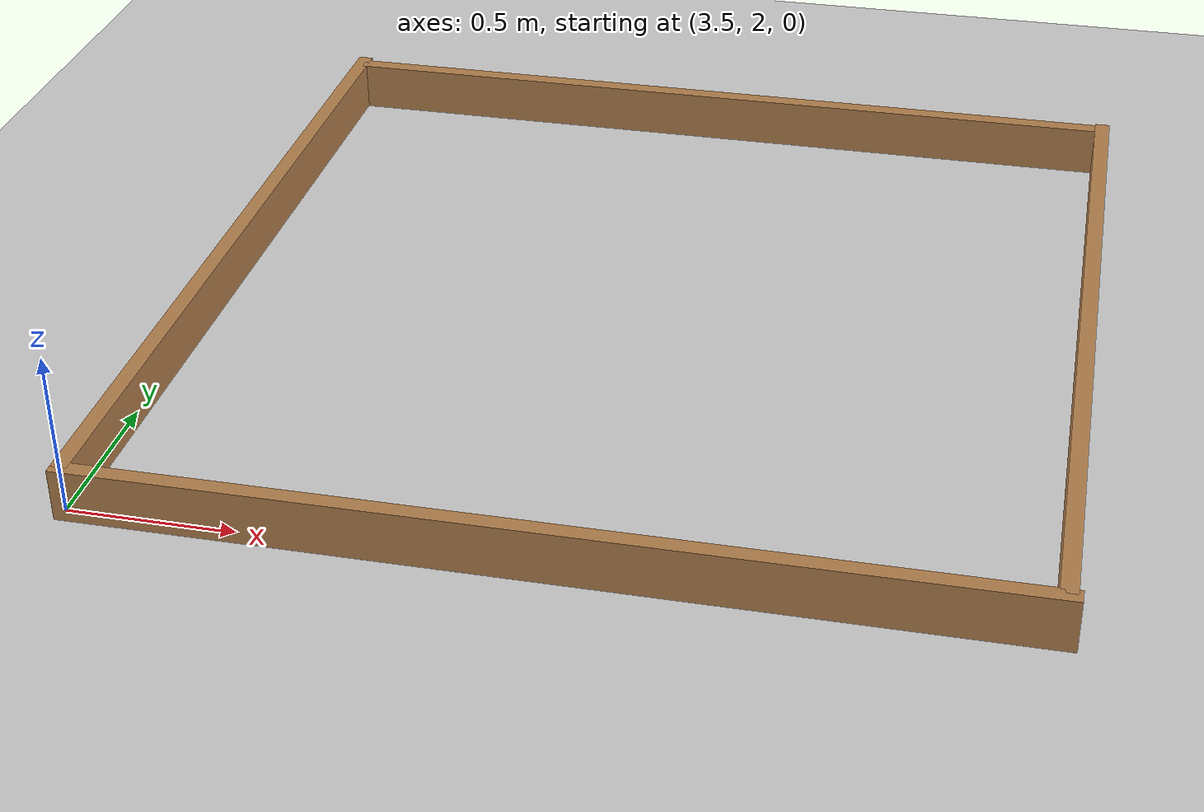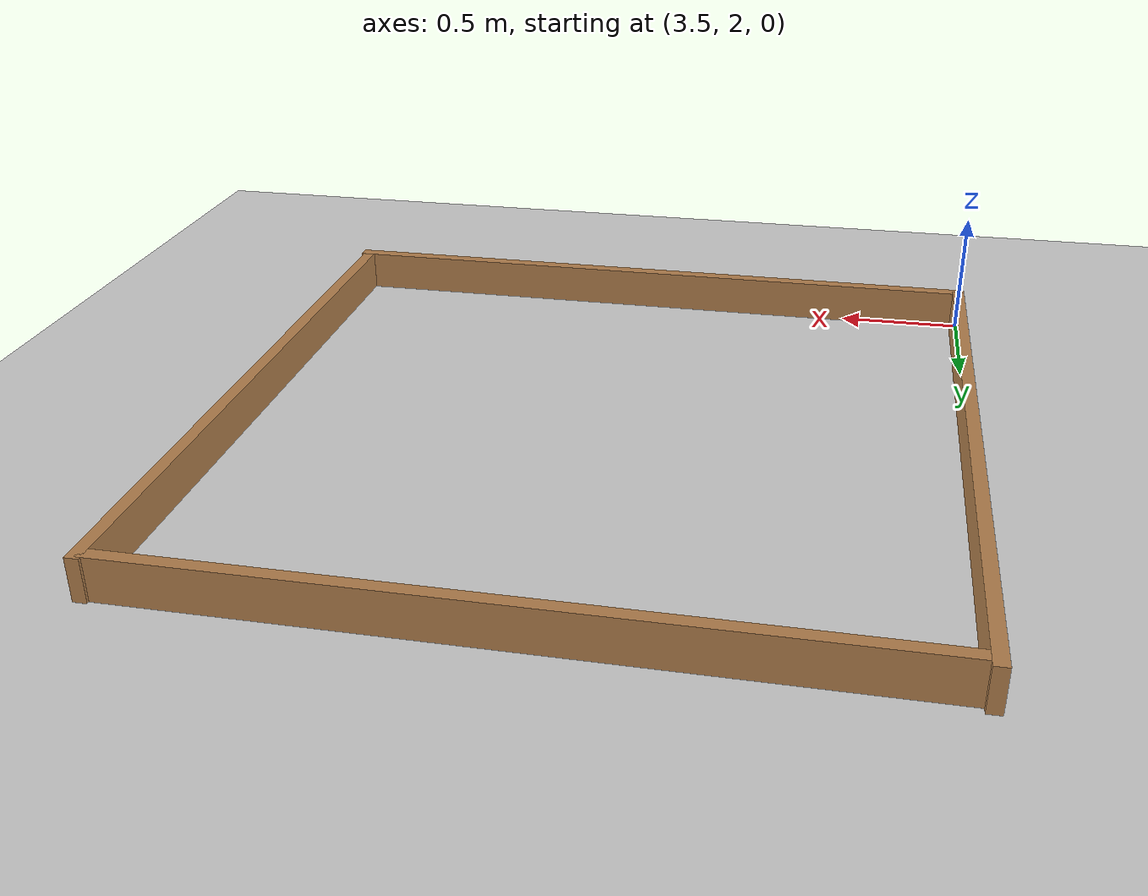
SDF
<sdf version="1.6">
 <world name="default">
  <model name="ground_plane">
   <static>1</static>
   <link name="link">
    <collision name="collision">
     <geometry><plane><normal>0 0 1</normal><size>100 100</size></plane></geometry>
     <surface><friction><ode><mu>100</mu><mu2>50</mu2></ode></friction></surface>
    </collision>
    <visual name="visual">
     <cast_shadows>0</cast_shadows>
     <geometry><plane><normal>0 0 1</normal><size>100 100</size></plane></geometry>
     <material>
      <script><uri>file://media/materials/scripts/gazebo.material</uri><name>Gazebo/Grey</name></script>
     </material>
    </visual>
   </link>
  </model>
  <model name="turtlebot3_square">
   <link name="Wall_0">
    <pose>0.557021 1.925 0 0 -0 0</pose>
    <inertial>
     <inertia><ixx>0</ixx><ixy>0</ixy><ixz>0</ixz><iyy>0</iyy><iyz>0</iyz><izz>0</izz></inertia>
     <mass>0</mass>
    </inertial>
    <visual name="Wall_0_Visual">
     <pose>0 0 0.25 0 -0 0</pose>
     <geometry><box><size>2.7317 0.05 0.2</size></box></geometry>
     <material>
      <script><uri>file://media/materials/scripts/gazebo.material</uri><name>Gazebo/Wood</name></script>
      <ambient>1 1 1 1</ambient>
     </material>
    </visual>
    <collision name="Wall_0_Collision">
     <pose>0 0 0.25 0 -0 0</pose>
     <geometry><box><size>2.7317 0.05 0.2</size></box></geometry>
     <surface>
      <friction>
       <ode><mu>1</mu><mu2>1</mu2><fdir1>0 0 0</fdir1><slip1>0</slip1><slip2>0</slip2></ode>
       <torsional>
        <coefficient>1</coefficient>
        <patch_radius>0</patch_radius>
        <surface_radius>0</surface_radius>
        <use_patch_radius>1</use_patch_radius>
        <ode><slip>0</slip></ode>
       </torsional>
      </friction>
      <bounce><restitution_coefficient>0</restitution_coefficient><threshold>1e+06</threshold></bounce>
      <contact>
       <collide_without_contact>0</collide_without_contact>
       <collide_without_contact_bitmask>1</collide_without_contact_bitmask>
       <collide_bitmask>1</collide_bitmask>
       <ode>
        <soft_cfm>0</soft_cfm>
        <soft_erp>0.2</soft_erp>
        <kp>1e+13</kp>
        <kd>1</kd>
        <max_vel>0.01</max_vel>
        <min_depth>0</min_depth>
       </ode>
       <bullet>
        <split_impulse>1</split_impulse>
        <split_impulse_penetration_threshold>-0.01</split_impulse_penetration_threshold>
        <soft_cfm>0</soft_cfm>
        <soft_erp>0.2</soft_erp>
        <kp>1e+13</kp>
        <kd>1</kd>
       </bullet>
      </contact>
     </surface>
    </collision>
   </link>
   <link name="Wall_2">
    <pose>-0.819251 0.606379 0 0 0 -1.5708</pose>
    <inertial>
     <inertia><ixx>0</ixx><ixy>0</ixy><ixz>0</ixz><iyy>0</iyy><iyz>0</iyz><izz>0</izz></inertia>
     <mass>0</mass>
    </inertial>
    <visual name="Wall_2_Visual">
     <pose>0 0 0.25 0 -0 0</pose>
     <geometry><box><size>2.73482 0.05 0.2</size></box></geometry>
     <material>
      <script><uri>file://media/materials/scripts/gazebo.material</uri><name>Gazebo/Wood</name></script>
      <ambient>1 1 1 1</ambient>
     </material>
    </visual>
    <collision name="Wall_2_Collision">
     <pose>0 0 0.25 0 -0 0</pose>
     <geometry><box><size>2.73482 0.05 0.2</size></box></geometry>
     <surface>
      <friction>
       <ode><mu>1</mu><mu2>1</mu2><fdir1>0 0 0</fdir1><slip1>0</slip1><slip2>0</slip2></ode>
       <torsional>
        <coefficient>1</coefficient>
        <patch_radius>0</patch_radius>
        <surface_radius>0</surface_radius>
        <use_patch_radius>1</use_patch_radius>
        <ode><slip>0</slip></ode>
       </torsional>
      </friction>
      <bounce><restitution_coefficient>0</restitution_coefficient><threshold>1e+06</threshold></bounce>
      <contact>
       <collide_without_contact>0</collide_without_contact>
       <collide_without_contact_bitmask>1</collide_without_contact_bitmask>
       <collide_bitmask>1</collide_bitmask>
       <ode>
        <soft_cfm>0</soft_cfm>
        <soft_erp>0.2</soft_erp>
        <kp>1e+13</kp>
        <kd>1</kd>
        <max_vel>0.01</max_vel>
        <min_depth>0</min_depth>
       </ode>
       <bullet>
        <split_impulse>1</split_impulse>
        <split_impulse_penetration_threshold>-0.01</split_impulse_penetration_threshold>
        <soft_cfm>0</soft_cfm>
        <soft_erp>0.2</soft_erp>
        <kp>1e+13</kp>
        <kd>1</kd>
       </bullet>
      </contact>
     </surface>
    </collision>
   </link>
   <link name="Wall_3">
    <pose>0.558829 -0.759815 0 0 -0 0</pose>
    <inertial>
     <inertia><ixx>0</ixx><ixy>0</ixy><ixz>0</ixz><iyy>0</iyy><iyz>0</iyz><izz>0</izz></inertia>
     <mass>0</mass>
    </inertial>
    <visual name="Wall_3_Visual">
     <pose>0 0 0.25 0 -0 0</pose>
     <geometry><box><size>2.80543 0.05 0.2</size></box></geometry>
     <material>
      <script><uri>file://media/materials/scripts/gazebo.material</uri><name>Gazebo/Wood</name></script>
      <ambient>1 1 1 1</ambient>
     </material>
    </visual>
    <collision name="Wall_3_Collision">
     <pose>0 0 0.25 0 -0 0</pose>
     <geometry><box><size>2.80543 0.05 0.2</size></box></geometry>
     <surface>
      <friction>
       <ode><mu>1</mu><mu2>1</mu2><fdir1>0 0 0</fdir1><slip1>0</slip1><slip2>0</slip2></ode>
       <torsional>
        <coefficient>1</coefficient>
        <patch_radius>0</patch_radius>
        <surface_radius>0</surface_radius>
        <use_patch_radius>1</use_patch_radius>
        <ode><slip>0</slip></ode>
       </torsional>
      </friction>
      <bounce><restitution_coefficient>0</restitution_coefficient><threshold>1e+06</threshold></bounce>
      <contact>
       <collide_without_contact>0</collide_without_contact>
       <collide_without_contact_bitmask>1</collide_without_contact_bitmask>
       <collide_bitmask>1</collide_bitmask>
       <ode>
        <soft_cfm>0</soft_cfm>
        <soft_erp>0.2</soft_erp>
        <kp>1e+13</kp>
        <kd>1</kd>
        <max_vel>0.01</max_vel>
        <min_depth>0</min_depth>
       </ode>
       <bullet>
        <split_impulse>1</split_impulse>
        <split_impulse_penetration_threshold>-0.01</split_impulse_penetration_threshold>
        <soft_cfm>0</soft_cfm>
        <soft_erp>0.2</soft_erp>
        <kp>1e+13</kp>
        <kd>1</kd>
       </bullet>
      </contact>
     </surface>
    </collision>
   </link>
   <link name="Wall_4">
    <pose>1.925 0.603331 0 0 -0 1.5708</pose>
    <inertial>
     <inertia><ixx>0</ixx><ixy>0</ixy><ixz>0</ixz><iyy>0</iyy><iyz>0</iyz><izz>0</izz></inertia>
     <mass>0</mass>
    </inertial>
    <visual name="Wall_4_Visual">
     <pose>0 0 0.25 0 -0 0</pose>
     <geometry><box><size>2.71507 0.05 0.2</size></box></geometry>
     <material>
      <script><uri>file://media/materials/scripts/gazebo.material</uri><name>Gazebo/Wood</name></script>
      <ambient>1 1 1 1</ambient>
     </material>
    </visual>
    <collision name="Wall_4_Collision">
     <pose>0 0 0.25 0 -0 0</pose>
     <geometry><box><size>2.71507 0.05 0.2</size></box></geometry>
     <surface>
      <friction>
       <ode><mu>1</mu><mu2>1</mu2><fdir1>0 0 0</fdir1><slip1>0</slip1><slip2>0</slip2></ode>
       <torsional>
        <coefficient>1</coefficient>
        <patch_radius>0</patch_radius>
        <surface_radius>0</surface_radius>
        <use_patch_radius>1</use_patch_radius>
        <ode><slip>0</slip></ode>
       </torsional>
      </friction>
      <bounce><restitution_coefficient>0</restitution_coefficient><threshold>1e+06</threshold></bounce>
      <contact>
       <collide_without_contact>0</collide_without_contact>
       <collide_without_contact_bitmask>1</collide_without_contact_bitmask>
       <collide_bitmask>1</collide_bitmask>
       <ode>
        <soft_cfm>0</soft_cfm>
        <soft_erp>0.2</soft_erp>
        <kp>1e+13</kp>
        <kd>1</kd>
        <max_vel>0.01</max_vel>
        <min_depth>0</min_depth>
       </ode>
       <bullet>
        <split_impulse>1</split_impulse>
        <split_impulse_penetration_threshold>-0.01</split_impulse_penetration_threshold>
        <soft_cfm>0</soft_cfm>
        <soft_erp>0.2</soft_erp>
        <kp>1e+13</kp>
        <kd>1</kd>
       </bullet>
      </contact>
     </surface>
    </collision>
   </link>
   <static>1</static>
   <pose>4.32445 2.74229 -0.18993 0 -0 0</pose>
  </model>
 </world>
</sdf>
